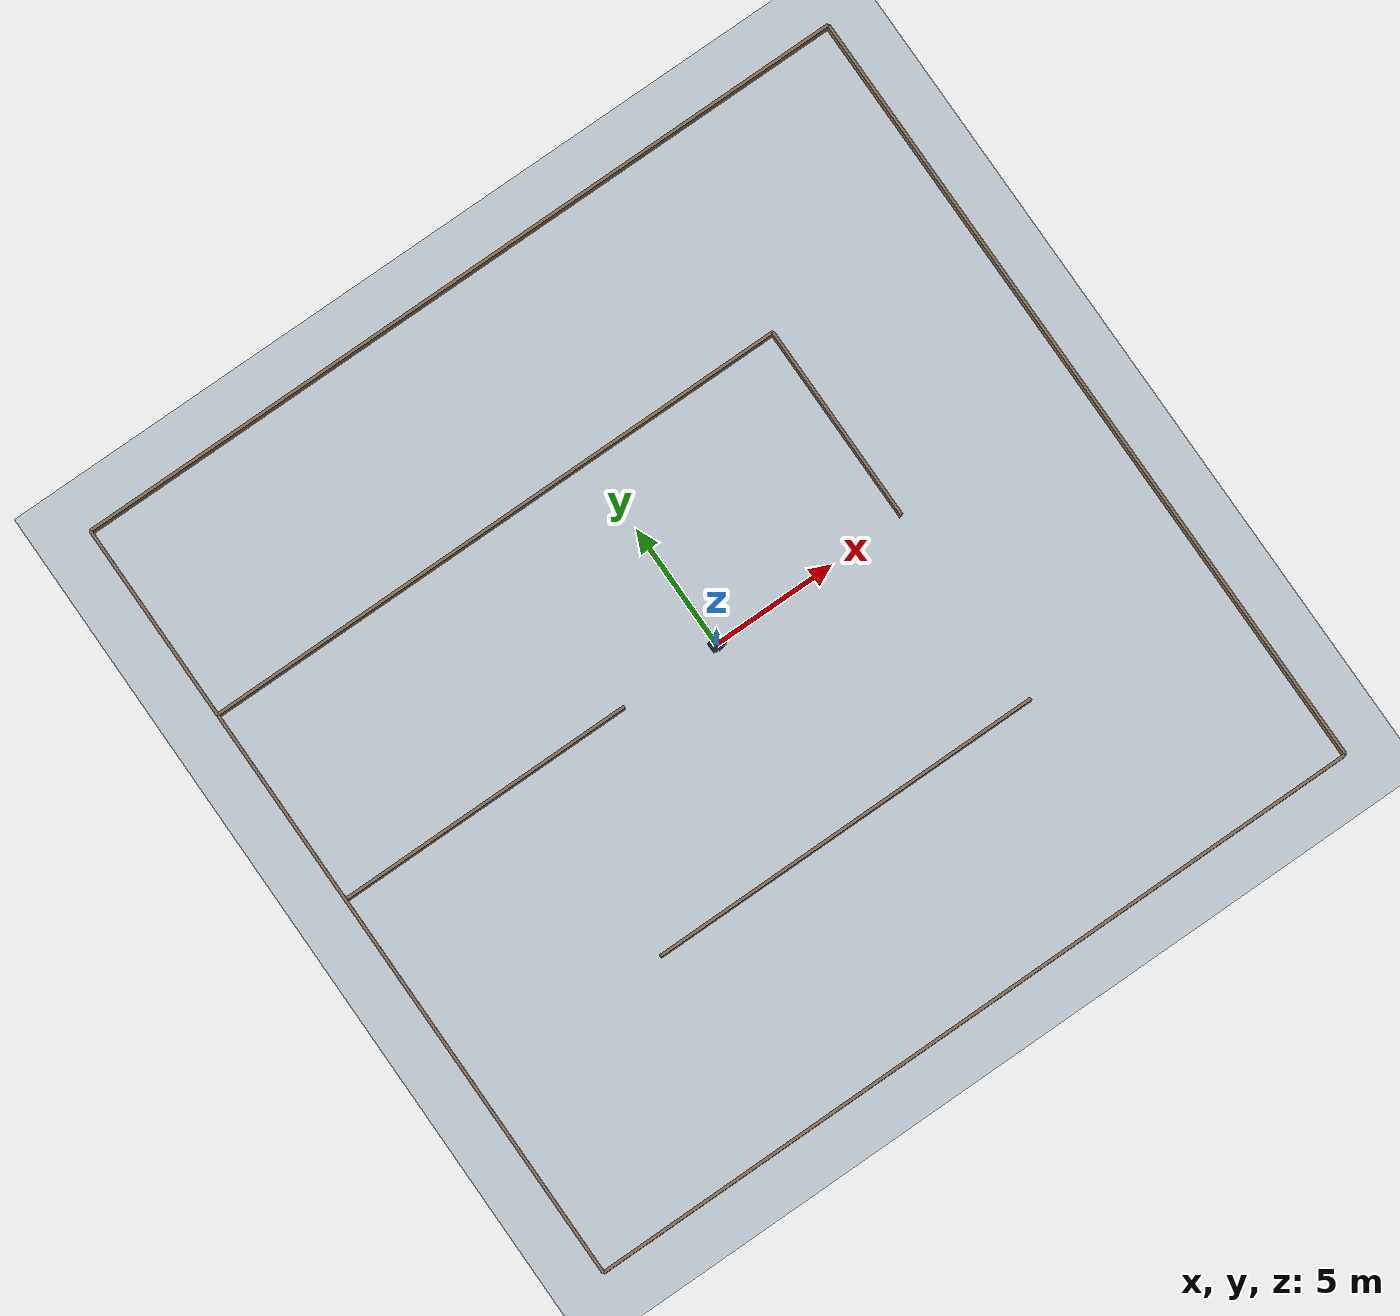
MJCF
<mujoco model="diffdrive_wall_follow">
  <!-- P2_D3 largemaze × WALL_LAYOUT_SCALE=4.0; RoboMaster-ish chassis. Sync with worlds.py. -->
  <compiler angle="radian" balanceinertia="true" autolimits="true"/>
  <option timestep="0.002" gravity="0 0 -9.81" integrator="implicitfast"/>

  <default>
    <geom friction="1 0.5 0.01" rgba="0.7 0.7 0.7 1"/>
  </default>

  <worldbody>
    <light pos="0 0 20" dir="0 0 -1" diffuse="0.85 0.85 0.85"/>
    <geom name="floor" type="plane" size="18 18 0.05" rgba="0.78 0.82 0.86 1" friction="1 0.5 0.01"/>

    <geom name="wall_0" type="box" pos="0 -8 0.35" size="8 0.06 0.35" rgba="0.55 0.45 0.35 1"/>
    <geom name="wall_1" type="box" pos="-10 0 0.35" size="6 0.06 0.35" rgba="0.55 0.45 0.35 1"/>
    <geom name="wall_2" type="box" pos="-16 0 0.35" size="0.06 16 0.35" rgba="0.55 0.45 0.35 1"/>
    <geom name="wall_3" type="box" pos="8 4 0.35" size="0.06 4 0.35" rgba="0.55 0.45 0.35 1"/>
    <geom name="wall_4" type="box" pos="0 16 0.35" size="16 0.06 0.35" rgba="0.55 0.45 0.35 1"/>
    <geom name="wall_5" type="box" pos="16 0 0.35" size="0.06 16 0.35" rgba="0.55 0.45 0.35 1"/>
    <geom name="wall_6" type="box" pos="-4 8 0.35" size="12 0.06 0.35" rgba="0.55 0.45 0.35 1"/>
    <geom name="wall_7" type="box" pos="0 -16 0.35" size="16 0.06 0.35" rgba="0.55 0.45 0.35 1"/>

    <body name="base" pos="0 0 0.075">
      <freejoint name="root"/>

      <geom name="chassis" type="box" size="0.275 0.21 0.06" pos="0 0 0.11" mass="8.0" rgba="0.12 0.14 0.18 1" group="1" contype="1" conaffinity="1"/>
      <geom name="armor_front" type="box" size="0.04 0.18 0.05" pos="0.24 0 0.12" mass="0.3" rgba="0.85 0.15 0.12 1" group="1" contype="0" conaffinity="0"/>
      <geom name="armor_rear" type="box" size="0.03 0.16 0.045" pos="-0.24 0 0.12" mass="0.2" rgba="0.85 0.15 0.12 1" group="1" contype="0" conaffinity="0"/>
      <geom name="armor_left" type="box" size="0.18 0.03 0.045" pos="0 0.20 0.12" mass="0.2" rgba="0.2 0.45 0.85 1" group="1" contype="0" conaffinity="0"/>
      <geom name="armor_right" type="box" size="0.18 0.03 0.045" pos="0 -0.20 0.12" mass="0.2" rgba="0.2 0.45 0.85 1" group="1" contype="0" conaffinity="0"/>
      <geom name="lidar_mount" type="cylinder" size="0.04 0.025" pos="0.10 0 0.20" mass="0.08" rgba="0.25 0.25 0.28 1" contype="0" conaffinity="0" group="1"/>
      <body name="left_wheel" pos="0 0.22 0">
        <joint name="left_wheel_joint" type="hinge" axis="0 1 0" damping="0.12"/>
        <geom name="left_wheel_geom" type="cylinder" size="0.075 0.03" quat="0.7071 0.7071 0 0" mass="0.6" rgba="0.08 0.08 0.08 1" friction="1.5 0.5 0.01" group="1" contype="0" conaffinity="0"/>
      </body>
      <body name="right_wheel" pos="0 -0.22 0">
        <joint name="right_wheel_joint" type="hinge" axis="0 1 0" damping="0.12"/>
        <geom name="right_wheel_geom" type="cylinder" size="0.075 0.03" quat="0.7071 0.7071 0 0" mass="0.6" rgba="0.08 0.08 0.08 1" friction="1.5 0.5 0.01" group="1" contype="0" conaffinity="0"/>
      </body>

    </body>
  </worldbody>
</mujoco>
